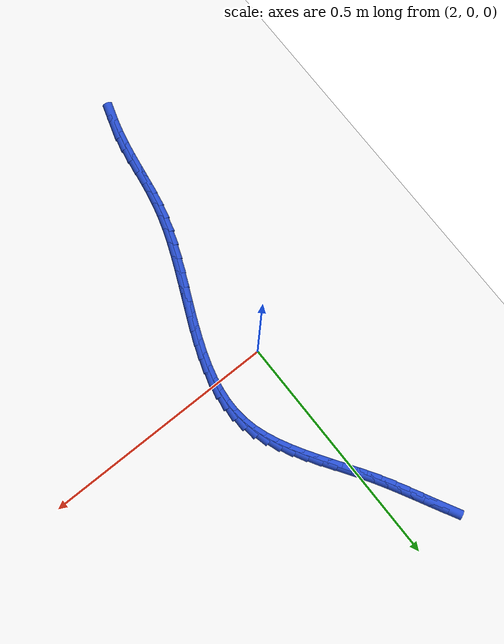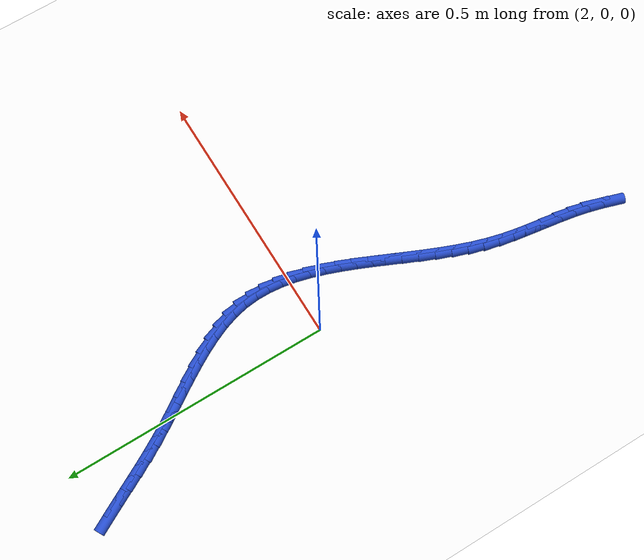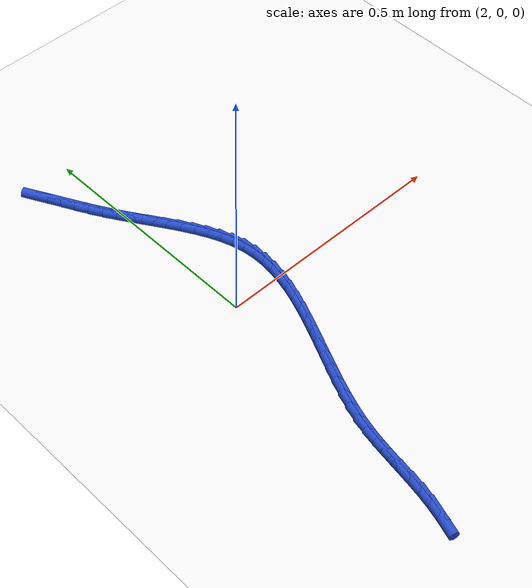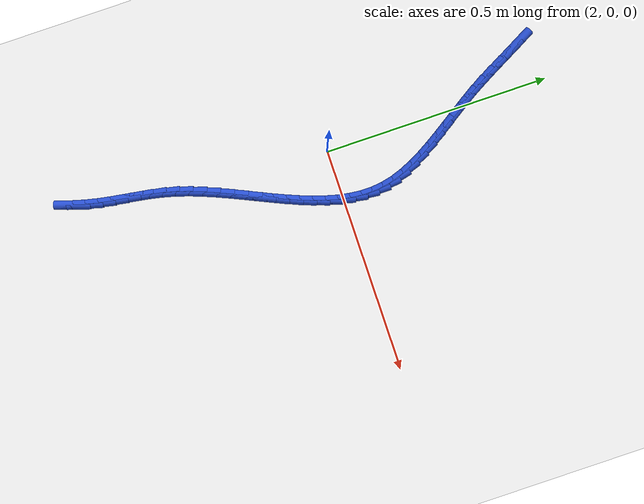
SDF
<sdf version="1.6">
 <world name="default">
  <model name="ground_plane">
   <static>1</static>
   <link name="link">
    <collision name="collision">
     <geometry><plane><normal>0 0 1</normal><size>100 100</size></plane></geometry>
     <surface><friction><ode><mu>100</mu><mu2>50</mu2></ode></friction></surface>
    </collision>
    <visual name="visual">
     <cast_shadows>0</cast_shadows>
     <geometry><plane><normal>0 0 1</normal><size>100 100</size></plane></geometry>
     <material>
      <script><uri>file://media/materials/scripts/gazebo.material</uri><name>Gazebo/WhiteGlow</name></script>
     </material>
    </visual>
   </link>
  </model>
  <model name="line">
   <link name="link_99">
    <pose>1.9101536658370917 0.463369678432696 0.01 0 1.57 -1.0768610203396174</pose>
    <collision name="collision">
     <geometry><cylinder><radius>0.01</radius><length>0.08</length></cylinder></geometry>
    </collision>
    <visual name="visual">
     <material>
      <script><name>Gazebo/Blue</name><uri>file://media/materials/scripts/gazebo.material</uri></script>
     </material>
     <geometry><cylinder><radius>0.01</radius><length>0.08</length></cylinder></geometry>
    </visual>
   </link>
   <link name="link_100">
    <pose>1.9233741077457363 0.43881707259091984 0.01 0 1.57 -1.08331288378409</pose>
    <collision name="collision">
     <geometry><cylinder><radius>0.01</radius><length>0.08</length></cylinder></geometry>
    </collision>
    <visual name="visual">
     <material>
      <script><name>Gazebo/Blue</name><uri>file://media/materials/scripts/gazebo.material</uri></script>
     </material>
     <geometry><cylinder><radius>0.01</radius><length>0.08</length></cylinder></geometry>
    </visual>
   </link>
   <link name="link_101">
    <pose>1.9365128297785583 0.41403451012804954 0.01 0 1.57 -1.079837469988679</pose>
    <collision name="collision">
     <geometry><cylinder><radius>0.01</radius><length>0.08</length></cylinder></geometry>
    </collision>
    <visual name="visual">
     <material>
      <script><name>Gazebo/Blue</name><uri>file://media/materials/scripts/gazebo.material</uri></script>
     </material>
     <geometry><cylinder><radius>0.01</radius><length>0.08</length></cylinder></geometry>
    </visual>
   </link>
   <link name="link_102">
    <pose>1.9498375307364884 0.38911084434608006 0.01 0 1.57 -1.0666744729656619</pose>
    <collision name="collision">
     <geometry><cylinder><radius>0.01</radius><length>0.08</length></cylinder></geometry>
    </collision>
    <visual name="visual">
     <material>
      <script><name>Gazebo/Blue</name><uri>file://media/materials/scripts/gazebo.material</uri></script>
     </material>
     <geometry><cylinder><radius>0.01</radius><length>0.08</length></cylinder></geometry>
    </visual>
   </link>
   <link name="link_103">
    <pose>1.9636159094204582 0.36413492854700696 0.01 0 1.57 -1.0441644130246452</pose>
    <collision name="collision">
     <geometry><cylinder><radius>0.01</radius><length>0.08</length></cylinder></geometry>
    </collision>
    <visual name="visual">
     <material>
      <script><name>Gazebo/Blue</name><uri>file://media/materials/scripts/gazebo.material</uri></script>
     </material>
     <geometry><cylinder><radius>0.01</radius><length>0.08</length></cylinder></geometry>
    </visual>
   </link>
   <link name="link_104">
    <pose>1.9781156646313975 0.33919561603282505 0.01 0 1.57 -1.0149941680878063</pose>
    <collision name="collision">
     <geometry><cylinder><radius>0.01</radius><length>0.08</length></cylinder></geometry>
    </collision>
    <visual name="visual">
     <material>
      <script><name>Gazebo/Blue</name><uri>file://media/materials/scripts/gazebo.material</uri></script>
     </material>
     <geometry><cylinder><radius>0.01</radius><length>0.08</length></cylinder></geometry>
    </visual>
   </link>
   <link name="link_105">
    <pose>1.9935357761133823 0.3143691953725183 0.01 0 1.57 -0.9938341066433508</pose>
    <collision name="collision">
     <geometry><cylinder><radius>0.01</radius><length>0.08</length></cylinder></geometry>
    </collision>
    <visual name="visual">
     <material>
      <script><name>Gazebo/Blue</name><uri>file://media/materials/scripts/gazebo.material</uri></script>
     </material>
     <geometry><cylinder><radius>0.01</radius><length>0.08</length></cylinder></geometry>
    </visual>
   </link>
   <link name="link_106">
    <pose>2.0096242305857936 0.28964949464732553 0.01 0 1.57 -0.9859453770244534</pose>
    <collision name="collision">
     <geometry><cylinder><radius>0.01</radius><length>0.08</length></cylinder></geometry>
    </collision>
    <visual name="visual">
     <material>
      <script><name>Gazebo/Blue</name><uri>file://media/materials/scripts/gazebo.material</uri></script>
     </material>
     <geometry><cylinder><radius>0.01</radius><length>0.08</length></cylinder></geometry>
    </visual>
   </link>
   <link name="link_107">
    <pose>2.0259471723116507 0.2649970934915632 0.01 0 1.57 -0.9910861846176253</pose>
    <collision name="collision">
     <geometry><cylinder><radius>0.01</radius><length>0.08</length></cylinder></geometry>
    </collision>
    <visual name="visual">
     <material>
      <script><name>Gazebo/Blue</name><uri>file://media/materials/scripts/gazebo.material</uri></script>
     </material>
     <geometry><cylinder><radius>0.01</radius><length>0.08</length></cylinder></geometry>
    </visual>
   </link>
   <link name="link_108">
    <pose>2.042070242877044 0.2403724796290683 0.01 0 1.57 -1.0095414949914012</pose>
    <collision name="collision">
     <geometry><cylinder><radius>0.01</radius><length>0.08</length></cylinder></geometry>
    </collision>
    <visual name="visual">
     <material>
      <script><name>Gazebo/Blue</name><uri>file://media/materials/scripts/gazebo.material</uri></script>
     </material>
     <geometry><cylinder><radius>0.01</radius><length>0.08</length></cylinder></geometry>
    </visual>
   </link>
   <link name="link_109">
    <pose>2.0575590838680595 0.2157361407836787 0.01 0 1.57 -1.0421428060820073</pose>
    <collision name="collision">
     <geometry><cylinder><radius>0.01</radius><length>0.08</length></cylinder></geometry>
    </collision>
    <visual name="visual">
     <material>
      <script><name>Gazebo/Blue</name><uri>file://media/materials/scripts/gazebo.material</uri></script>
     </material>
     <geometry><cylinder><radius>0.01</radius><length>0.08</length></cylinder></geometry>
    </visual>
   </link>
   <link name="link_110">
    <pose>2.0719793368707857 0.19104856467923137 0.01 0 1.57 -1.0902426826815959</pose>
    <collision name="collision">
     <geometry><cylinder><radius>0.01</radius><length>0.08</length></cylinder></geometry>
    </collision>
    <visual name="visual">
     <material>
      <script><name>Gazebo/Blue</name><uri>file://media/materials/scripts/gazebo.material</uri></script>
     </material>
     <geometry><cylinder><radius>0.01</radius><length>0.08</length></cylinder></geometry>
    </visual>
   </link>
   <link name="link_111">
    <pose>2.0848966434713114 0.1662702390395635 0.01 0 1.57 -1.1556094439103495</pose>
    <collision name="collision">
     <geometry><cylinder><radius>0.01</radius><length>0.08</length></cylinder></geometry>
    </collision>
    <visual name="visual">
     <material>
      <script><name>Gazebo/Blue</name><uri>file://media/materials/scripts/gazebo.material</uri></script>
     </material>
     <geometry><cylinder><radius>0.01</radius><length>0.08</length></cylinder></geometry>
    </visual>
   </link>
   <link name="link_112">
    <pose>2.095876645255725 0.1413616515885122 0.01 0 1.57 -1.2401406685813792</pose>
    <collision name="collision">
     <geometry><cylinder><radius>0.01</radius><length>0.08</length></cylinder></geometry>
    </collision>
    <visual name="visual">
     <material>
      <script><name>Gazebo/Blue</name><uri>file://media/materials/scripts/gazebo.material</uri></script>
     </material>
     <geometry><cylinder><radius>0.01</radius><length>0.08</length></cylinder></geometry>
    </visual>
   </link>
   <link name="link_113">
    <pose>2.1044849838101145 0.11628329004991532 0.01 0 1.57 -1.3452414573095766</pose>
    <collision name="collision">
     <geometry><cylinder><radius>0.01</radius><length>0.08</length></cylinder></geometry>
    </collision>
    <visual name="visual">
     <material>
      <script><name>Gazebo/Blue</name><uri>file://media/materials/scripts/gazebo.material</uri></script>
     </material>
     <geometry><cylinder><radius>0.01</radius><length>0.08</length></cylinder></geometry>
    </visual>
   </link>
   <link name="link_114">
    <pose>2.1102874692018414 0.09099565357367549 0.01 0 1.57 -1.4642681074332853</pose>
    <collision name="collision">
     <geometry><cylinder><radius>0.01</radius><length>0.08</length></cylinder></geometry>
    </collision>
    <visual name="visual">
     <material>
      <script><name>Gazebo/Blue</name><uri>file://media/materials/scripts/gazebo.material</uri></script>
     </material>
     <geometry><cylinder><radius>0.01</radius><length>0.08</length></cylinder></geometry>
    </visual>
   </link>
   <link name="link_115">
    <pose>2.1130169437494004 0.06547056910552519 0.01 0 1.57 1.5657303795382702</pose>
    <collision name="collision">
     <geometry><cylinder><radius>0.01</radius><length>0.08</length></cylinder></geometry>
    </collision>
    <visual name="visual">
     <material>
      <script><name>Gazebo/Blue</name><uri>file://media/materials/scripts/gazebo.material</uri></script>
     </material>
     <geometry><cylinder><radius>0.01</radius><length>0.08</length></cylinder></geometry>
    </visual>
   </link>
   <link name="link_116">
    <pose>2.112886453259163 0.03971243003887865 0.01 0 1.57 1.4675640978388031</pose>
    <collision name="collision">
     <geometry><cylinder><radius>0.01</radius><length>0.08</length></cylinder></geometry>
    </collision>
    <visual name="visual">
     <material>
      <script><name>Gazebo/Blue</name><uri>file://media/materials/scripts/gazebo.material</uri></script>
     </material>
     <geometry><cylinder><radius>0.01</radius><length>0.08</length></cylinder></geometry>
    </visual>
   </link>
   <link name="link_117">
    <pose>2.110194810077795 0.013731446283725465 0.01 0 1.57 1.3838747744183173</pose>
    <collision name="collision">
     <geometry><cylinder><radius>0.01</radius><length>0.08</length></cylinder></geometry>
    </collision>
    <visual name="visual">
     <material>
      <script><name>Gazebo/Blue</name><uri>file://media/materials/scripts/gazebo.material</uri></script>
     </material>
     <geometry><cylinder><radius>0.01</radius><length>0.08</length></cylinder></geometry>
    </visual>
   </link>
   <link name="link_118">
    <pose>2.105240826551964 -0.012462172249944491 0.01 0 1.57 1.3144938489558995</pose>
    <collision name="collision">
     <geometry><cylinder><radius>0.01</radius><length>0.08</length></cylinder></geometry>
    </collision>
    <visual name="visual">
     <material>
      <script><name>Gazebo/Blue</name><uri>file://media/materials/scripts/gazebo.material</uri></script>
     </material>
     <geometry><cylinder><radius>0.01</radius><length>0.08</length></cylinder></geometry>
    </visual>
   </link>
   <link name="link_119">
    <pose>2.098323315028337 -0.03885821565214158 0.01 0 1.57 1.258571295179504</pose>
    <collision name="collision">
     <geometry><cylinder><radius>0.01</radius><length>0.08</length></cylinder></geometry>
    </collision>
    <visual name="visual">
     <material>
      <script><name>Gazebo/Blue</name><uri>file://media/materials/scripts/gazebo.material</uri></script>
     </material>
     <geometry><cylinder><radius>0.01</radius><length>0.08</length></cylinder></geometry>
    </visual>
   </link>
   <link name="link_120">
    <pose>2.08974108785358 -0.06544647401287525 0.01 0 1.57 1.2149999390038555</pose>
    <collision name="collision">
     <geometry><cylinder><radius>0.01</radius><length>0.08</length></cylinder></geometry>
    </collision>
    <visual name="visual">
     <material>
      <script><name>Gazebo/Blue</name><uri>file://media/materials/scripts/gazebo.material</uri></script>
     </material>
     <geometry><cylinder><radius>0.01</radius><length>0.08</length></cylinder></geometry>
    </visual>
   </link>
   <link name="link_121">
    <pose>2.07979295737436 -0.09221673742215583 0.01 0 1.57 1.1826852443298164</pose>
    <collision name="collision">
     <geometry><cylinder><radius>0.01</radius><length>0.08</length></cylinder></geometry>
    </collision>
    <visual name="visual">
     <material>
      <script><name>Gazebo/Blue</name><uri>file://media/materials/scripts/gazebo.material</uri></script>
     </material>
     <geometry><cylinder><radius>0.01</radius><length>0.08</length></cylinder></geometry>
    </visual>
   </link>
   <link name="link_122">
    <pose>2.0687777359373443 -0.11915879596999346 0.01 0 1.57 1.1606904868637011</pose>
    <collision name="collision">
     <geometry><cylinder><radius>0.01</radius><length>0.08</length></cylinder></geometry>
    </collision>
    <visual name="visual">
     <material>
      <script><name>Gazebo/Blue</name><uri>file://media/materials/scripts/gazebo.material</uri></script>
     </material>
     <geometry><cylinder><radius>0.01</radius><length>0.08</length></cylinder></geometry>
    </visual>
   </link>
   <link name="link_123">
    <pose>2.0569942358891997 -0.1462624397463982 0.01 0 1.57 1.1483022630986923</pose>
    <collision name="collision">
     <geometry><cylinder><radius>0.01</radius><length>0.08</length></cylinder></geometry>
    </collision>
    <visual name="visual">
     <material>
      <script><name>Gazebo/Blue</name><uri>file://media/materials/scripts/gazebo.material</uri></script>
     </material>
     <geometry><cylinder><radius>0.01</radius><length>0.08</length></cylinder></geometry>
    </visual>
   </link>
   <link name="link_124">
    <pose>2.044741269576593 -0.1735174588413802 0.01 0 1.57 1.1450522476607725</pose>
    <collision name="collision">
     <geometry><cylinder><radius>0.01</radius><length>0.08</length></cylinder></geometry>
    </collision>
    <visual name="visual">
     <material>
      <script><name>Gazebo/Blue</name><uri>file://media/materials/scripts/gazebo.material</uri></script>
     </material>
     <geometry><cylinder><radius>0.01</radius><length>0.08</length></cylinder></geometry>
    </visual>
   </link>
   <link name="link_125">
    <pose>2.03231764934619 -0.20091364334495004 0.01 0 1.57 1.1507176787147577</pose>
    <collision name="collision">
     <geometry><cylinder><radius>0.01</radius><length>0.08</length></cylinder></geometry>
    </collision>
    <visual name="visual">
     <material>
      <script><name>Gazebo/Blue</name><uri>file://media/materials/scripts/gazebo.material</uri></script>
     </material>
     <geometry><cylinder><radius>0.01</radius><length>0.08</length></cylinder></geometry>
    </visual>
   </link>
   <link name="link_126">
    <pose>2.02002218754466 -0.22844078334711665 0.01 0 1.57 1.1653119770315576</pose>
    <collision name="collision">
     <geometry><cylinder><radius>0.01</radius><length>0.08</length></cylinder></geometry>
    </collision>
    <visual name="visual">
     <material>
      <script><name>Gazebo/Blue</name><uri>file://media/materials/scripts/gazebo.material</uri></script>
     </material>
     <geometry><cylinder><radius>0.01</radius><length>0.08</length></cylinder></geometry>
    </visual>
   </link>
   <link name="link_127">
    <pose>2.008153696518667 -0.2560886689378906 0.01 0 1.57 1.1890688178960434</pose>
    <collision name="collision">
     <geometry><cylinder><radius>0.01</radius><length>0.08</length></cylinder></geometry>
    </collision>
    <visual name="visual">
     <material>
      <script><name>Gazebo/Blue</name><uri>file://media/materials/scripts/gazebo.material</uri></script>
     </material>
     <geometry><cylinder><radius>0.01</radius><length>0.08</length></cylinder></geometry>
    </visual>
   </link>
   <link name="link_128">
    <pose>1.9970109886148781 -0.28384709020728194 0.01 0 1.57 1.2224166292257095</pose>
    <collision name="collision">
     <geometry><cylinder><radius>0.01</radius><length>0.08</length></cylinder></geometry>
    </collision>
    <visual name="visual">
     <material>
      <script><name>Gazebo/Blue</name><uri>file://media/materials/scripts/gazebo.material</uri></script>
     </material>
     <geometry><cylinder><radius>0.01</radius><length>0.08</length></cylinder></geometry>
    </visual>
   </link>
   <link name="link_129">
    <pose>1.9868928761799627 -0.311705837245301 0.01 0 1.57 1.2659345722829096</pose>
    <collision name="collision">
     <geometry><cylinder><radius>0.01</radius><length>0.08</length></cylinder></geometry>
    </collision>
    <visual name="visual">
     <material>
      <script><name>Gazebo/Blue</name><uri>file://media/materials/scripts/gazebo.material</uri></script>
     </material>
     <geometry><cylinder><radius>0.01</radius><length>0.08</length></cylinder></geometry>
    </visual>
   </link>
   <link name="link_130">
    <pose>1.978098171560585 -0.3396547001419576 0.01 0 1.57 1.3196780360864828</pose>
    <collision name="collision">
     <geometry><cylinder><radius>0.01</radius><length>0.08</length></cylinder></geometry>
    </collision>
    <visual name="visual">
     <material>
      <script><name>Gazebo/Blue</name><uri>file://media/materials/scripts/gazebo.material</uri></script>
     </material>
     <geometry><cylinder><radius>0.01</radius><length>0.08</length></cylinder></geometry>
    </visual>
   </link>
   <link name="link_131">
    <pose>1.9709083229136628 -0.36768164257806657 0.01 0 1.57 1.3703953250338652</pose>
    <collision name="collision">
     <geometry><cylinder><radius>0.01</radius><length>0.08</length></cylinder></geometry>
    </collision>
    <visual name="visual">
     <material>
      <script><name>Gazebo/Blue</name><uri>file://media/materials/scripts/gazebo.material</uri></script>
     </material>
     <geometry><cylinder><radius>0.01</radius><length>0.08</length></cylinder></geometry>
    </visual>
   </link>
   <link name="link_132">
    <pose>1.9652102919814203 -0.395733135160156 0.01 0 1.57 1.4039967863583405</pose>
    <collision name="collision">
     <geometry><cylinder><radius>0.01</radius><length>0.08</length></cylinder></geometry>
    </collision>
    <visual name="visual">
     <material>
      <script><name>Gazebo/Blue</name><uri>file://media/materials/scripts/gazebo.material</uri></script>
     </material>
     <geometry><cylinder><radius>0.01</radius><length>0.08</length></cylinder></geometry>
    </visual>
   </link>
   <link name="link_133">
    <pose>1.9604992517565825 -0.4237144391676813 0.01 0 1.57 1.4193226823874963</pose>
    <collision name="collision">
     <geometry><cylinder><radius>0.01</radius><length>0.08</length></cylinder></geometry>
    </collision>
    <visual name="visual">
     <material>
      <script><name>Gazebo/Blue</name><uri>file://media/materials/scripts/gazebo.material</uri></script>
     </material>
     <geometry><cylinder><radius>0.01</radius><length>0.08</length></cylinder></geometry>
    </visual>
   </link>
   <link name="link_134">
    <pose>1.9562535505831267 -0.45152904622118567 0.01 0 1.57 1.4159020785831042</pose>
    <collision name="collision">
     <geometry><cylinder><radius>0.01</radius><length>0.08</length></cylinder></geometry>
    </collision>
    <visual name="visual">
     <material>
      <script><name>Gazebo/Blue</name><uri>file://media/materials/scripts/gazebo.material</uri></script>
     </material>
     <geometry><cylinder><radius>0.01</radius><length>0.08</length></cylinder></geometry>
    </visual>
   </link>
   <link name="link_135">
    <pose>1.9519515368050326 -0.4790804479412121 0.01 0 1.57 1.3932208719169883</pose>
    <collision name="collision">
     <geometry><cylinder><radius>0.01</radius><length>0.08</length></cylinder></geometry>
    </collision>
    <visual name="visual">
     <material>
      <script><name>Gazebo/Blue</name><uri>file://media/materials/scripts/gazebo.material</uri></script>
     </material>
     <geometry><cylinder><radius>0.01</radius><length>0.08</length></cylinder></geometry>
    </visual>
   </link>
   <link name="link_136">
    <pose>1.9470715587662764 -0.5062721359483027 0.01 0 1.57 1.3519320934271488</pose>
    <collision name="collision">
     <geometry><cylinder><radius>0.01</radius><length>0.08</length></cylinder></geometry>
    </collision>
    <visual name="visual">
     <material>
      <script><name>Gazebo/Blue</name><uri>file://media/materials/scripts/gazebo.material</uri></script>
     </material>
     <geometry><cylinder><radius>0.01</radius><length>0.08</length></cylinder></geometry>
    </visual>
   </link>
   <link name="link_137">
    <pose>1.9411228661667685 -0.5330165880838666 0.01 0 1.57 1.3047545859540088</pose>
    <collision name="collision">
     <geometry><cylinder><radius>0.01</radius><length>0.08</length></cylinder></geometry>
    </collision>
    <visual name="visual">
     <material>
      <script><name>Gazebo/Blue</name><uri>file://media/materials/scripts/gazebo.material</uri></script>
     </material>
     <geometry><cylinder><radius>0.01</radius><length>0.08</length></cylinder></geometry>
    </visual>
   </link>
   <link name="link_138">
    <pose>1.9339538171247515 -0.5593248960867581 0.01 0 1.57 1.2600688655552341</pose>
    <collision name="collision">
     <geometry><cylinder><radius>0.01</radius><length>0.08</length></cylinder></geometry>
    </collision>
    <visual name="visual">
     <material>
      <script><name>Gazebo/Blue</name><uri>file://media/materials/scripts/gazebo.material</uri></script>
     </material>
     <geometry><cylinder><radius>0.01</radius><length>0.08</length></cylinder></geometry>
    </visual>
   </link>
  </model>
 </world>
</sdf>
